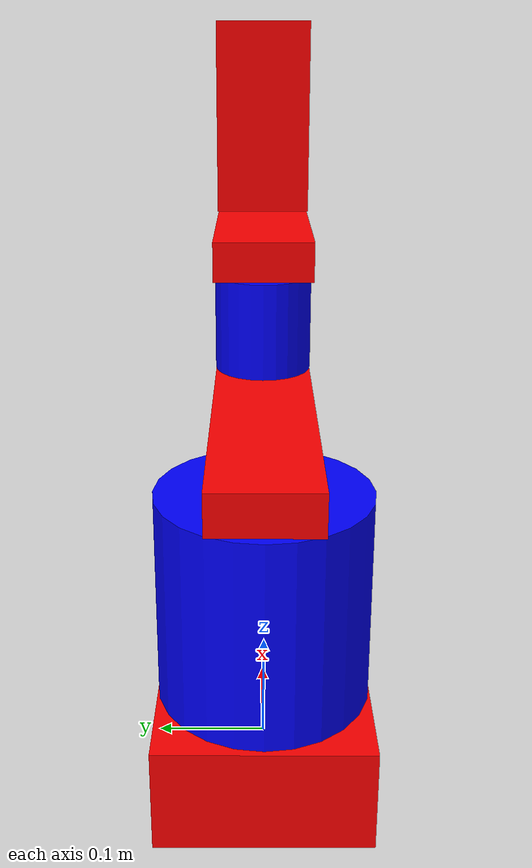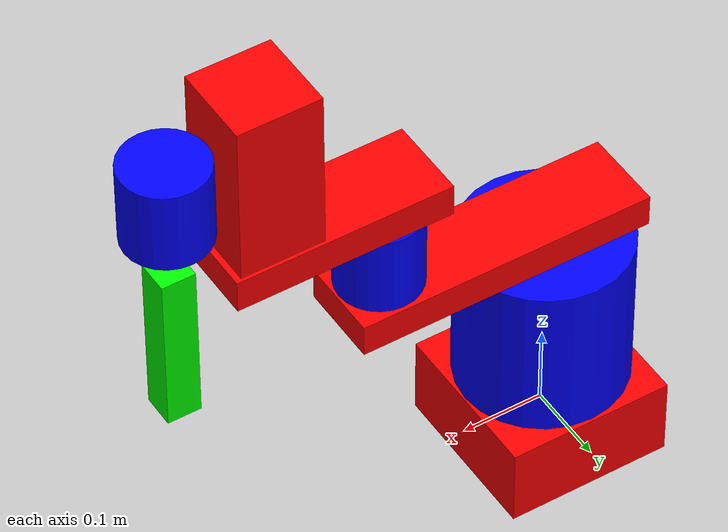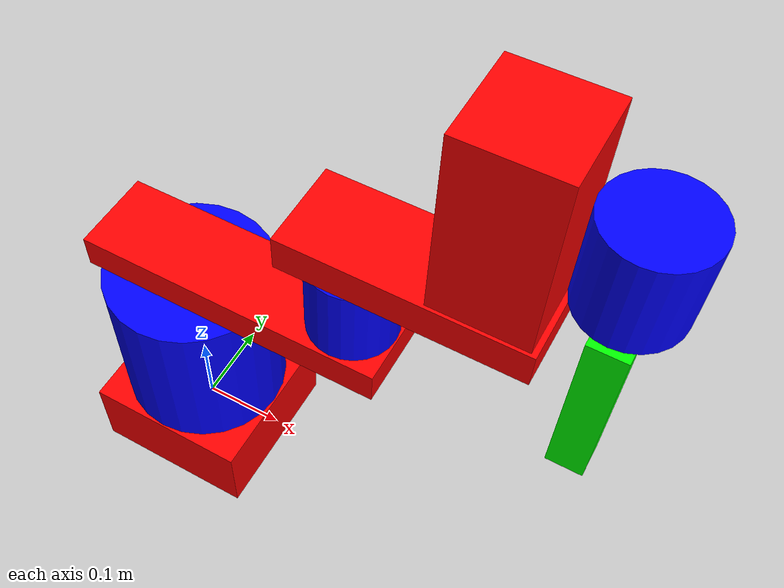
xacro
<?xml version="1.0"?>
<robot name="scara" xmlns:xacro="http://ros.org/wiki/xacro">

  <xacro:include filename="scara_description.xacro" />

<ros2_control name="Scara" type="system">
  <hardware>
    <plugin>gz_ros2_control/GazeboSimSystem</plugin>
  </hardware>

  <joint name="joint_0">
    <command_interface name="position" />
    <state_interface name="position" />
  </joint>

  <joint name="joint_1">
    <command_interface name="position" />
    <state_interface name="position" />
  </joint>

  <joint name="joint_2">
    <command_interface name="position" />
    <state_interface name="position" />
  </joint>

  <joint name="joint_3">
    <command_interface name="position" />
    <state_interface name="position" />
  </joint>
</ros2_control>

<gazebo>
  <plugin name="gz_ros2_control::GazeboSimROS2ControlPlugin" filename="libgz_ros2_control-system.so">
  <parameters>$(find scara_gz_bringup)/config/controllers.yaml</parameters>
  </plugin>
</gazebo>

<gazebo reference="joint_0">
  <ros2_control>
    <command_interface>position</command_interface>
    <state_interface>position</state_interface>
  </ros2_control>
</gazebo>

<gazebo reference="joint_1">
  <ros2_control>
    <command_interface>position</command_interface>
    <state_interface>position</state_interface>
  </ros2_control>
</gazebo>

<gazebo reference="joint_2">
  <ros2_control>
    <command_interface>position</command_interface>
    <state_interface>position</state_interface>
  </ros2_control>
</gazebo>

<gazebo reference="joint_3">
  <ros2_control>
    <command_interface>position</command_interface>
    <state_interface>position</state_interface>
  </ros2_control>
</gazebo>

</robot>

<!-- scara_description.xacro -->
<robot name="scara_urdf" xmlns:xacro="http://www.ros.org/wiki/xacro">

  <material name="red"><color rgba="1 0 0 1"/></material>
  <material name="blue"><color rgba="0 0 1 1"/></material>
  <material name="green"><color rgba="0 1 0 1"/></material>
  <material name="gray"><color rgba="0.5 0.5 0.5 1"/></material>

  <link name="world_0">
    <inertial>
      <origin xyz="0 0 0" rpy="0 0 0"/>
      <mass value="10000.0"/>
      <inertia ixx="0.002" ixy="0" ixz="0" iyy="0.002" iyz="0" izz="0.002"/>
    </inertial>
    <visual>
      <origin xyz="0 0 0" rpy="0 0 0"/>
      <geometry>
        <box size="0.2 0.2 0.1"/>
      </geometry>
      <material name="red"/>
    </visual>

    <collision>
      <origin xyz="0 0 0" rpy="0 0 0"/>
      <geometry>
        <box size="0.2 0.2 0.1"/>
      </geometry>
    </collision>
  </link>

  <joint name="joint_0" type="revolute">
    <parent link="world_0"/>
    <child  link="link1"/>
    <origin xyz="0 0 0.254" rpy="0 0 0"/>
    <axis xyz="0 0 1"/>
    <limit lower="-3.1416" upper="3.1416" effort="50" velocity="3.0"/>
  </joint>

  <link name="link1">
    <inertial>
      <origin xyz="0 0 0" rpy="0 0 0"/>
      <mass value="0.5"/>
      <inertia ixx="0.001" ixy="0" ixz="0" iyy="0.001" iyz="0" izz="0.001"/>
    </inertial>
    <visual>
      <origin xyz="0 0 -0.1" rpy="0 0 0"/>
      <geometry>
        <cylinder radius="0.1" length="0.20"/>
      </geometry>
      <material name="blue"/>
    </visual>
    <collision>
      <origin xyz="0 0 -0.1" rpy="0 0 0"/>
      <geometry>
        <cylinder radius="0.1" length="0.20"/>
      </geometry>
    </collision>
    <visual>
      <origin xyz="0.08 0 0.025" rpy="0 0 0"/>
      <geometry>
        <box size="0.36 0.10 0.04"/>
      </geometry>
      <material name="red"/>
    </visual>
    <collision>
      <origin xyz="0.08 0 0.025" rpy="0 0 0"/>
      <geometry>
        <box size="0.36 0.10 0.04"/>
      </geometry>
    </collision>
  </link>

  <joint name="joint_1" type="revolute">
    <parent link="link1"/>
    <child  link="link2"/>
    <origin xyz="0.210 0 0" rpy="0 0 0"/>
    <axis xyz="0 0 1"/>
    <limit lower="-3.1416" upper="3.1416" effort="50" velocity="3.0"/>
  </joint>

  <link name="link2">
    <inertial>
      <origin xyz="0 0 0" rpy="0 0 0"/>
      <mass value="0.4"/>
      <inertia ixx="0.001" ixy="0" ixz="0" iyy="0.001" iyz="0" izz="0.001"/>
    </inertial>
    <visual>
      <origin xyz="0 0 0.1" rpy="0 0 0"/>
      <geometry>
        <cylinder radius="0.05" length="0.10"/>
      </geometry>
      <material name="blue"/>
    </visual>
    <collision>
      <origin xyz="0 0 0.1" rpy="0 0 0"/>
      <geometry>
        <cylinder radius="0.05" length="0.10"/>
      </geometry>
    </collision>
    <visual>
      <origin xyz="0.07 0 0.175" rpy="0 0 0"/>
      <geometry>
        <box size="0.26 0.10 0.04"/>
      </geometry>
      <material name="red"/>
    </visual>
    <collision>
      <origin xyz="0.07 0 0.175" rpy="0 0 0"/>
      <geometry>
        <box size="0.26 0.10 0.04"/>
      </geometry>
    </collision>
    <visual>
      <origin xyz="0.145 0 0.3" rpy="0 0 0"/>
      <geometry>
        <box size="0.10 0.10 0.20"/>
      </geometry>
      <material name="red"/>
    </visual>
    <collision>
      <origin xyz="0.145 0 0.3" rpy="0 0 0"/>
      <geometry>
        <box size="0.10 0.10 0.20"/>
      </geometry>
    </collision>
  </link>

  <joint name="joint_2" type="revolute">
    <parent link="link2"/>
    <child  link="link3"/>
    <origin xyz="0.250 0 0" rpy="0 0 0"/>
    <axis xyz="0 0 1"/>
    <limit lower="-3.1416" upper="3.1416" effort="50" velocity="3.0"/>
  </joint>

  <link name="link3">
    <inertial>
      <origin xyz="0 0 0" rpy="0 0 0"/>
      <mass value="0.3"/>
      <inertia ixx="0.0008" ixy="0" ixz="0" iyy="0.0008" iyz="0" izz="0.0008"/>
    </inertial>
    <visual>
      <origin xyz="0 0 0.3" rpy="0 0 0"/>
      <geometry>
        <cylinder radius="0.05" length="0.10"/>
      </geometry>
      <material name="blue"/>
    </visual>
    <collision>
      <origin xyz="0 0 0.3" rpy="0 0 0"/>
      <geometry>
        <cylinder radius="0.05" length="0.10"/>
      </geometry>
    </collision>
  </link>

  <joint name="joint_3" type="prismatic">
    <parent link="link3"/>
    <child  link="tool"/>
    <origin xyz="0 0 0" rpy="0 0 0"/>
    <axis xyz="0 0 1"/>
    <limit lower="-0.3" upper="0.1" effort="200" velocity="0.5"/>
  </joint>

  <link name="tool">
    <inertial>
      <origin xyz="0 0 0" rpy="0 0 0"/>
      <mass value="0.2"/>
      <inertia ixx="0.0005" ixy="0" ixz="0" iyy="0.0005" iyz="0" izz="0.0005"/>
    </inertial>
    <visual>
      <origin xyz="0 0 0.1" rpy="0 0 0"/>
      <geometry>
        <box size="0.04 0.04 0.20"/>
      </geometry>
      <material name="green"/>
    </visual>
    <collision>
      <origin xyz="0 0 0.1" rpy="0 0 0"/>
      <geometry>
        <box size="0.04 0.04 0.20"/>
      </geometry>
    </collision>
  </link>

</robot>
